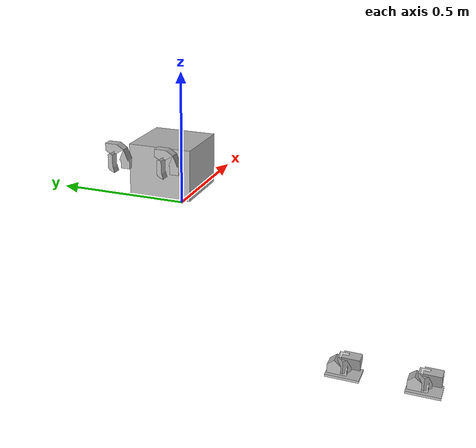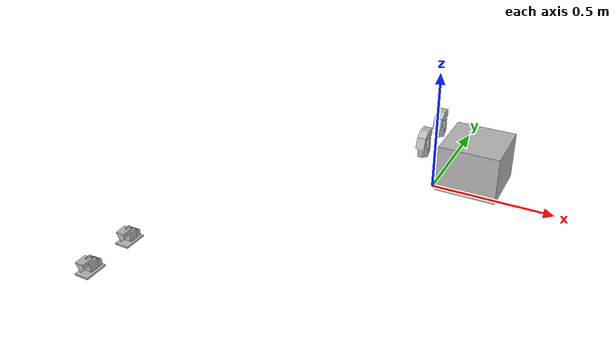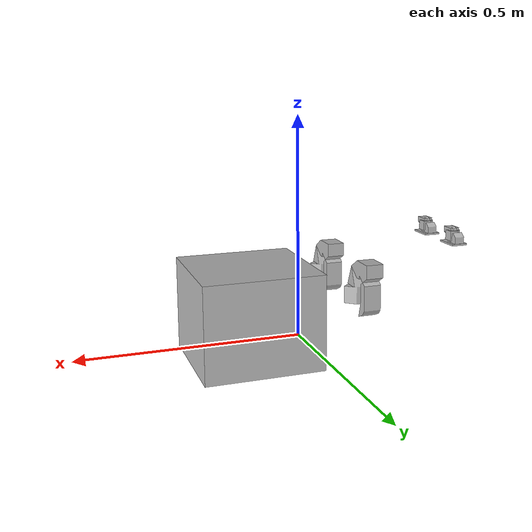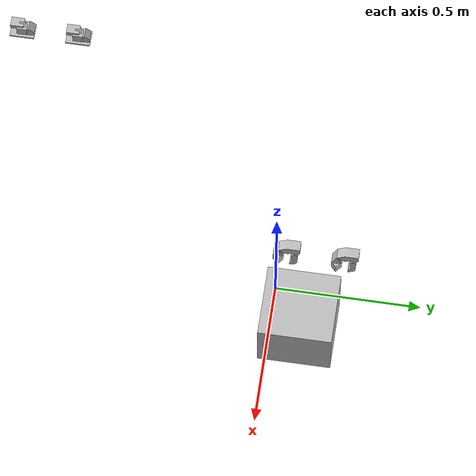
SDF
<?xml version='1.0'?>
<sdf version="1.4">
  <model name="daedalus">
    <plugin name="gazebo_ros_control" filename="libgazebo_ros_control.so">
      <robotNamespace>/daedalus</robotNamespace>
    </plugin>
    <static>false</static>
    <link name="leg1link0">
      <self_collide>1</self_collide>
      <pose>-0.892683838 -1.03151079 0 0 0 0</pose>
    	<inertial>
      	<pose>0.892683838 1.03151079 0.148531107 0 0 0</pose>
        <mass>4.72639954</mass>
      	<inertia>
          <ixx>3.76702192</ixx>
          <ixy>0</ixy>
          <ixz>0</ixz>
          <iyy>5.02939053</iyy>
          <iyz>0</iyz>
          <izz>0.104767786</izz>
        </inertia>
      </inertial>
      <collision name="collision">
        <geometry>
          <mesh>
            <uri>file:///home/meit/catkin_ws/src/daedalus_description/meshes/link0.dae</uri>
          </mesh>
        </geometry>
      </collision>
       <visual name="visual">
          <geometry>
          <mesh>
            <uri>file:///home/meit/catkin_ws/src/daedalus_description/meshes/link0.dae</uri>
          </mesh>
          </geometry>
       </visual>
    </link>
    <link name="leg1link1">
      <self_collide>1</self_collide>
      <pose>-0.892683838 -1.03151079 0 0 0 0</pose>
    	<inertial>
      	<pose>0.837170246 1.0317214 0.161524277 0 0 0</pose>
        <mass> 6.23121787</mass>
      	<inertia>
          <ixx>4.36786663</ixx>
          <ixy>0</ixy>
          <ixz>0</ixz>
          <iyy>6.63326988</iyy>
          <iyz>0</iyz>
          <izz>0.164683289</izz>
        </inertia>
      </inertial>
      <collision name="collision">
        <geometry>
          <mesh>
            <uri>file:///home/meit/catkin_ws/src/daedalus_description/meshes/link1.dae</uri>
          </mesh>
        </geometry>
      </collision>
      <visual name="visual">
        <geometry>
          <mesh>
            <uri>file:///home/meit/catkin_ws/src/daedalus_description/meshes/link1.dae</uri>
          </mesh>
        </geometry>
      </visual>
    </link>
    <link name="leg1link2">
      <self_collide>1</self_collide>
      <pose>-0.892683838 -1.03151079 0 0 0 0</pose>
    	<inertial>
      	<pose>0.832200686 1.07493617 0.207757883 0 0 0</pose>
        <mass>7.32147232</mass>
        <inertia>
          <ixx>5.071313</ixx>
          <ixy>0</ixy>
          <ixz>0</ixz>
          <iyy>8.46231008</iyy>
          <iyz>0</iyz>
          <izz>0.316663829</izz>
        </inertia>
      </inertial>
      <collision name="collision">
        <geometry>
          <mesh>
            <uri>file:///home/meit/catkin_ws/src/daedalus_description/meshes/link2.dae</uri>
          </mesh>
        </geometry>
      </collision>
      <visual name="visual">
        <geometry>
          <mesh>
            <uri>file:///home/meit/catkin_ws/src/daedalus_description/meshes/link2.dae</uri>
          </mesh>
        </geometry>
      </visual>
    </link>
    <link name="leg1link3">
      <self_collide>1</self_collide>
      <pose>-0.892683838 -1.03151079 0 0 0 0</pose>
      <inertial>
        <pose>0.832200686 1.08721722 0.149707719 0 0 0</pose>
        <mass>4.31132052</mass>
        <inertia>
          <ixx>2.98629222</ixx>
          <ixy>0</ixy>
          <ixz>0</ixz>
          <iyy>5.09630234</iyy>
          <iyz>0</iyz>
          <izz>0.0982604921</izz>
        </inertia>
      </inertial>
      <collision name="collision">
        <geometry>
          <mesh>
            <uri>file:///home/meit/catkin_ws/src/daedalus_description/meshes/link3.dae</uri>
          </mesh>
        </geometry>
      </collision>
      <visual name="visual">
        <geometry>
          <mesh>
            <uri>file:///home/meit/catkin_ws/src/daedalus_description/meshes/link3.dae</uri>
          </mesh>
        </geometry>
      </visual>
    </link>
   <link name="leg1link4">
      <self_collide>1</self_collide>
      <pose>-0.892683838 -1.03151079 0 0 0 0</pose>
    	<inertial>
        <pose>0.83302605 1.05076371 0.100373531 0 0 0</pose>
        <mass>7.90197358</mass>
        <inertia>
          <ixx>5.48411837</ixx>
          <ixy>0</ixy>
          <ixz>0</ixz>
          <iyy>8.72903423</iyy>
          <iyz>0</iyz>
          <izz>0.0812723132</izz>
        </inertia>
      </inertial>
      <collision name="collision">
        <geometry>
          <mesh>
            <uri>file:///home/meit/catkin_ws/src/daedalus_description/meshes/link4.dae</uri>
          </mesh>
        </geometry>
      </collision>
      <visual name="visual">
        <geometry>
          <mesh>
            <uri>file:///home/meit/catkin_ws/src/daedalus_description/meshes/link4.dae</uri>
          </mesh>
        </geometry>
      </visual>
    </link>
    <link name="leg1link5">
      <self_collide>1</self_collide>
      <pose>-0.892683838 -1.03151079 0 0 0 0</pose>
      <inertial>
      	<pose>0.831916494 1.04042356 0.0403854853 0 0 0</pose>
        <mass>6.55679875</mass>
      	<inertia>
          <ixx>4.53905844</ixx>
          <ixy>0</ixy>
          <ixz>0</ixz>
          <iyy>7.09980012</iyy>
          <iyz>0</iyz>
          <izz>0.012361989</izz>
        </inertia>
      </inertial>
      <collision name="collision">
        <geometry>
          <mesh>
            <uri>file:///home/meit/catkin_ws/src/daedalus_description/meshes/link5.dae</uri>
          </mesh>
        </geometry>
      </collision>
      <visual name="visual">
        <geometry>
          <mesh>
            <uri>file:///home/meit/catkin_ws/src/daedalus_description/meshes/link5.dae</uri>
          </mesh>
        </geometry>
      </visual>
    </link>
    <link name="leg2link0">
      <self_collide>1</self_collide>
      <pose>-0.892683838 -0.83151079 0 0 0 0</pose>
    	<inertial>
        <pose>0.892683838 1.03151079 0.148531107 0 0 0</pose>
        <mass>4.72639954</mass>
        <inertia>
          <ixx>3.76702192</ixx>
          <ixy>0</ixy>
          <ixz>0</ixz>
          <iyy>5.02939053</iyy>
          <iyz>0</iyz>
          <izz>0.104767786</izz>
        </inertia>
      </inertial>
      <collision name="collision">
        <geometry>
          <mesh>
            <uri>file:///home/meit/catkin_ws/src/daedalus_description/meshes/link0.dae</uri>
          </mesh>
        </geometry>
      </collision>
      <visual name="visual">
        <geometry>
           <mesh>
              <uri>file:///home/meit/catkin_ws/src/daedalus_description/meshes/link0.dae</uri>
           </mesh>
        </geometry>
      </visual>
    </link>
    <link name="leg2link1">
      <self_collide>1</self_collide>
      <pose>-0.892683838 -0.83151079 0 0 0 0</pose>
    	<inertial>
        <pose>0.837170246 1.0317214 0.161524277 0 0 0</pose>
        <mass> 6.23121787</mass>
        <inertia>
          <ixx>4.36786663</ixx>
          <ixy>0</ixy>
          <ixz>0</ixz>
          <iyy>6.63326988</iyy>
          <iyz>0</iyz>
          <izz>0.164683289</izz>
        </inertia>
      </inertial>
      <collision name="collision">
        <geometry>
           <mesh>
              <uri>file:///home/meit/catkin_ws/src/daedalus_description/meshes/link1.dae</uri>
           </mesh>
        </geometry>
      </collision>
      <visual name="visual">
        <geometry>
          <mesh>
            <uri>file:///home/meit/catkin_ws/src/daedalus_description/meshes/link1.dae</uri>
          </mesh>
        </geometry>
      </visual>
    </link>
    <link name="leg2link2">
      <self_collide>1</self_collide>
      <pose>-0.892683838 -0.83151079 0 0 0 0</pose>
      <inertial>
        <pose>0.832200686 1.07493617 0.207757883 0 0 0</pose>
        <mass>7.32147232</mass>
        <inertia>
          <ixx>5.071313</ixx>
          <ixy>0</ixy>
          <ixz>0</ixz>
          <iyy>8.46231008</iyy>
          <iyz>0</iyz>
          <izz>0.316663829</izz>
        </inertia>
      </inertial>
      <collision name="collision">
        <geometry>
          <mesh>
            <uri>file:///home/meit/catkin_ws/src/daedalus_description/meshes/link2.dae</uri>
          </mesh>
        </geometry>
      </collision>
      <visual name="visual">
        <geometry>
          <mesh>
            <uri>file:///home/meit/catkin_ws/src/daedalus_description/meshes/link2.dae</uri>
          </mesh>
        </geometry>
      </visual>
    </link>
    <link name="leg2link3">
      <self_collide>1</self_collide>
      <pose>-0.892683838 -0.83151079 0 0 0 0</pose>
      <inertial>
        <pose>0.832200686 1.08721722 0.149707719 0 0 0</pose>
        <mass>4.31132052</mass>
        <inertia>
          <ixx>2.98629222</ixx>
          <ixy>0</ixy>
          <ixz>0</ixz>
          <iyy>5.09630234</iyy>
          <iyz>0</iyz>
          <izz>0.0982604921</izz>
        </inertia>
      </inertial>
      <collision name="collision">
        <geometry>
          <mesh>
            <uri>file:///home/meit/catkin_ws/src/daedalus_description/meshes/link3.dae</uri>
          </mesh>
        </geometry>
      </collision>
      <visual name="visual">
        <geometry>
          <mesh>
            <uri>file:///home/meit/catkin_ws/src/daedalus_description/meshes/link3.dae</uri>
          </mesh>
        </geometry>
      </visual>
    </link>
    <link name="leg2link4">
      <self_collide>1</self_collide>
      <pose>-0.892683838 -0.83151079 0 0 0 0</pose>
      <inertial>
        <pose>0.83302605 1.05076371 0.100373531 0 0 0</pose>
        <mass>7.90197358</mass>
        <inertia>
          <ixx>5.48411837</ixx>
          <ixy>0</ixy>
          <ixz>0</ixz>
          <iyy>8.72903423</iyy>
          <iyz>0</iyz>
          <izz>0.0812723132</izz>
        </inertia>
      </inertial>
      <collision name="collision">
        <geometry>
          <mesh>
            <uri>file:///home/meit/catkin_ws/src/daedalus_description/meshes/link4.dae</uri>
          </mesh>
        </geometry>
      </collision>
      <visual name="visual">
        <geometry>
          <mesh>
            <uri>file:///home/meit/catkin_ws/src/daedalus_description/meshes/link4.dae</uri>
          </mesh>
        </geometry>
      </visual>
    </link>
    <link name="leg2link5">
      <self_collide>1</self_collide>
      <pose>-0.892683838 -0.83151079 0 0 0 0</pose>
      <inertial>
        <pose>0.831916494 1.04042356 0.0403854853 0 0 0</pose>
        <mass>6.55679875</mass>
        <inertia>
          <ixx>4.53905844</ixx>
          <ixy>0</ixy>
          <ixz>0</ixz>
          <iyy>7.09980012</iyy>
          <iyz>0</iyz>
          <izz>0.012361989</izz>
        </inertia>
      </inertial>
      <collision name="collision">
        <geometry>
          <mesh>
            <uri>file:///home/meit/catkin_ws/src/daedalus_description/meshes/link5.dae</uri>
          </mesh>
        </geometry>
      </collision>
      <visual name="visual">
        <geometry>
          <mesh>
            <uri>file:///home/meit/catkin_ws/src/daedalus_description/meshes/link5.dae</uri>
          </mesh>
        </geometry>
      </visual>
    </link>
    <link name="chasis">
      <self_collide>1</self_collide>
      <pose>0.145 0.1 0.1 0 0 0</pose>
      <inertial>
        <mass>100.0</mass>
        <pose> 0 0 0 0 0 0</pose>
        <inertia>
          <ixx>0.083</ixx>
          <ixy>0.083</ixy>
          <ixz>0.083</ixz>
          <iyy>0.083</iyy>
          <iyz>0.083</iyz>
          <izz>0.083</izz>
        </inertia>
      </inertial>
      <collision name="collision">
        <geometry>
          <box>
            <size>0.25 0.25 0.2</size>
          </box>
        </geometry>
      </collision>
      <visual name="visual">
        <geometry>
          <box>
            <size>0.25 0.25 0.2</size>
          </box>
        </geometry>
      </visual>
    </link>
    <joint type="revolute" name="leg1joint0">
      <pose>0 1.03151 0.148531 0 0 0</pose>
      <child>leg1link0</child>
      <parent>chasis</parent>
      <axis>
        <limit>
          <lower>0</lower>
          <upper>0</upper>
        </limit>
      <xyz>1 0 0</xyz>
      </axis>
    </joint>
    <joint type="revolute" name="leg1joint1">
      <pose>0.86449 1.03151 0 0 0 0</pose>
      <child>leg1link0</child>
      <parent>leg1link1</parent>
      <axis>
        <xyz>0 0 1</xyz>
        <dynamics>
          <friction>5</friction>
        </dynamics>
        <limit>
          <lower>-1.57</lower>
          <upper>1.57</upper>
          <effort>160</effort>
        </limit>
      </axis>
    </joint>
    <joint type="revolute" name="leg1joint2">
      <pose>0 1.03203 0.207131 0 0 0</pose>
      <child>leg1link1</child>
      <parent>leg1link2</parent>
      <axis>
        <xyz>1 0 0</xyz>
        <dynamics>
          <damping>5</damping>
          <friction>5</friction>
        </dynamics>
        <limit>
          <lower>-3.72</lower>
          <upper>0.58</upper>
          <effort>10</effort>
        </limit>
      </axis>
    </joint>
    <joint type="revolute" name="leg1joint3">
      <pose>0 1.08843 0.186331 0 0 0</pose>
      <child>leg1link2</child>
      <parent>leg1link3</parent>
      <axis>
        <xyz>1 0 0</xyz>
        <dynamics>
          <friction>5</friction>
        </dynamics>
        <limit>
          <lower>-1.57</lower>
          <upper>1.57</upper>
          <effort>160</effort>
        </limit>
      </axis>
    </joint>
   <joint type="revolute" name="leg1joint4">
      <pose>0 1.07122 0.111983 0 0 0</pose>
      <child>leg1link3</child>
      <parent>leg1link4</parent>
      <axis>
        <xyz>1 0 0</xyz>
      </axis>
    </joint>
    <joint type="revolute" name="leg1joint5">
      <pose>0.83 0 0.09 0 0 0</pose>
      <child>leg1link4</child>
      <parent>leg1link5</parent>
      <axis>
        <xyz>0 1 0</xyz>
      </axis>
    </joint>
    <joint type="revolute" name="leg2joint0">
      <pose>0 1.03151 0.148531 0 0 0</pose>
      <child>leg2link0</child>
      <parent>chasis</parent>
      <axis>
        <limit>
          <lower>0</lower>
          <upper>0</upper>
        </limit>
        <xyz>1 0 0</xyz>
      </axis>
    </joint>
    <joint type="revolute" name="leg2joint1">
      <pose>0.86449 1.03151 0 0 0 0</pose>
      <child>leg2link0</child>
      <parent>leg2link1</parent>
      <axis>
        <xyz>0 0 1</xyz>
      </axis>
    </joint>
    <joint type="revolute" name="leg2joint2">
      <pose>0 1.03203 0.207131 0 0 0</pose>
      <child>leg2link1</child>
      <parent>leg2link2</parent>
      <axis>
        <xyz>1 0 0</xyz>
      </axis>
    </joint>
    <joint type="revolute" name="leg2joint3">
      <pose>0 1.08843 0.186331 0 0 0</pose>
      <child>leg2link2</child>
      <parent>leg2link3</parent>
      <axis>
        <xyz>1 0 0</xyz>
      </axis>
    </joint>
    <joint type="revolute" name="leg2joint4">
      <pose>0 1.07122 0.111983 0 0 0</pose>
      <child>leg2link3</child>
      <parent>leg2link4</parent>
      <axis>
        <xyz>1 0 0</xyz>
      </axis>
    </joint>
    <joint type="revolute" name="leg2joint5">
      <pose>0.83 0 0.09 0 0 0</pose>
      <child>leg2link4</child>
      <parent>leg2link5</parent>
      <axis>
        <xyz>0 1 0</xyz>
      </axis>
    </joint>
    <plugin name="gazebo_ros_control" filename="libgazebo_ros_control.so">
      <robotNamespace>/rrbot</robotNamespace>
    </plugin>
  </model>
</sdf>
